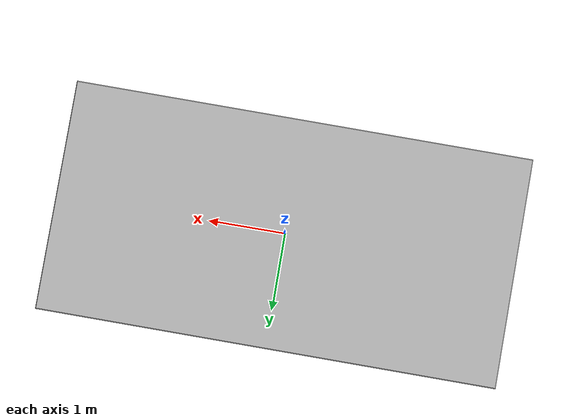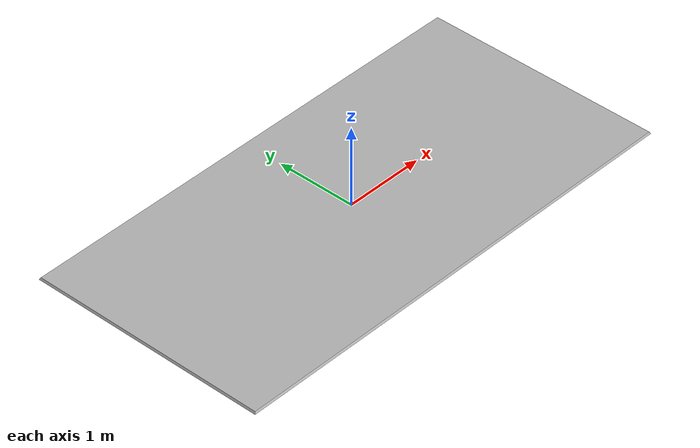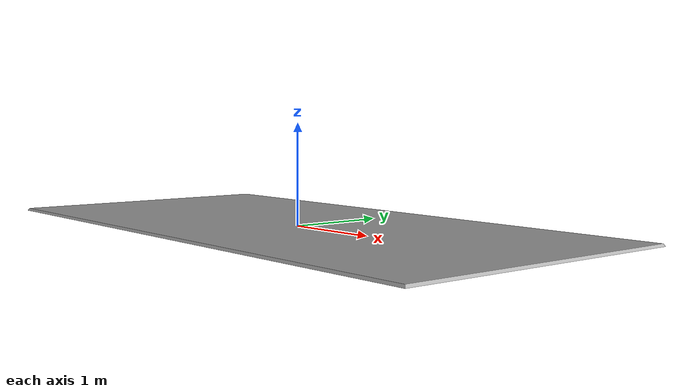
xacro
<?xml version="1.0" ?>
<robot name="Cen2" xmlns:xacro="http://www.ros.org/wiki/xacro">

<xacro:include filename="$(find Cen2_description)/urdf/materials.xacro" />
<xacro:include filename="$(find Cen2_description)/urdf/Cen2.ros2control" />
<xacro:include filename="$(find Cen2_description)/urdf/Cen2.gazebo" />
<link name="base_link">
  <inertial>
    <origin xyz="2.6653441919039912e-15 -1.6658401199399945e-16 0.01247037675140422" rpy="0 0 0"/>
    <mass value="3510.964646952963"/>
    <inertia ixx="2612.082169" iyy="10490.365422" izz="13102.081899" ixy="-0.0" iyz="0.0" ixz="-0.0"/>
  </inertial>
  <visual>
    <origin xyz="0 0 0" rpy="0 0 0"/>
    <geometry>
      <mesh filename="file://$(find Cen2_description)/meshes/base_link.stl" scale="0.001 0.001 0.001"/>
    </geometry>
    <material name="silver"/>
  </visual>
  <collision>
    <origin xyz="0 0 0" rpy="0 0 0"/>
    <geometry>
      <mesh filename="file://$(find Cen2_description)/meshes/base_link.stl" scale="0.001 0.001 0.001"/>
    </geometry>
  </collision>
</link>

</robot>

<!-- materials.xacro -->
<robot name="Cen2" xmlns:xacro="http://www.ros.org/wiki/xacro" >

<material name="silver">
  <color rgba="0.700 0.700 0.700 1.000"/>
</material>

</robot>

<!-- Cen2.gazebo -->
<robot name="Cen2" xmlns:xacro="http://www.ros.org/wiki/xacro" >

<xacro:property name="body_color" value="Gazebo/Silver" />

<gazebo reference="base_link">
  <material>${body_color}</material>
  <mu1>0.2</mu1>
  <mu2>0.2</mu2>
  <self_collide>true</self_collide>
  <gravity>true</gravity>
</gazebo>

</robot>
